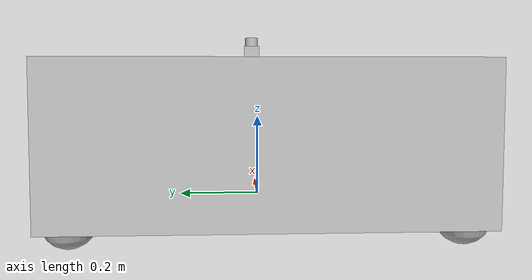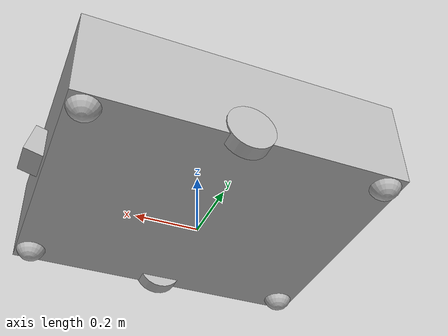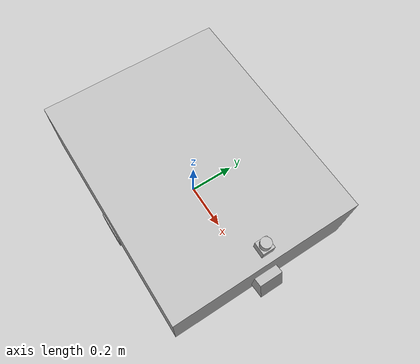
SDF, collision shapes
<?xml version='1.0'?>
<sdf version='1.4'>
  <model name="my_robot">
  <static>false</static>

  <link name='chassis'>
    <pose>0 0 .185 0 0 0</pose>

    <collision name='collision'>
      <geometry>
        <box>
          <size>1 .8 .3</size>
        </box>
      </geometry>
    </collision>
    <visual name='visual'>
    <pose>0 0 0.05 0 0 0</pose>
      <geometry>
        <box>
          <size>1 .8 .3</size>
        </box>
      </geometry>
    </visual>

    <collision name='caster_collision_TL'>
      <pose>.45 .35 -0.135 0 0 0</pose>
      <geometry>
	      <sphere>
	        <radius>.05</radius>
        </sphere>
      </geometry>
      <surface>
        <friction>
	        <ode>
    	      <mu>0</mu>
            <mu2>0</mu2>
            <slip1>1.0</slip1>
            <slip2>1.0</slip2>
	        </ode>
        </friction>
      </surface>
    </collision>
    <visual name='caster_visual_TL'>
      <pose>.45 .35 -0.135 0 0 0</pose>
      <geometry>
        <sphere>
	        <radius>.05</radius>
        </sphere>
      </geometry>
    </visual>

    <collision name='caster_collision_TR'>
      <pose>.45 -.35 -0.135 0 0 0</pose>
      <geometry>
	      <sphere>
	        <radius>.05</radius>
        </sphere>
      </geometry>
      <surface>
        <friction>
	        <ode>
    	      <mu>0</mu>
            <mu2>0</mu2>
            <slip1>1.0</slip1>
            <slip2>1.0</slip2>
	        </ode>
        </friction>
      </surface>
    </collision>
    <visual name='caster_visual_TR'>
      <pose>.45 -.35 -0.135 0 0 0</pose>
      <geometry>
        <sphere>
	        <radius>.05</radius>
        </sphere>
      </geometry>
    </visual>

    <collision name='caster_collision_BL'>
      <pose>-.45 .35 -0.135 0 0 0</pose>
      <geometry>
	      <sphere>
	        <radius>.05</radius>
        </sphere>
      </geometry>
      <surface>
        <friction>
	        <ode>
    	      <mu>0</mu>
            <mu2>0</mu2>
            <slip1>1.0</slip1>
            <slip2>1.0</slip2>
	        </ode>
        </friction>
      </surface>
    </collision>
    <visual name='caster_visual_BL'>
      <pose>-.45 .35 -0.135 0 0 0</pose>
      <geometry>
        <sphere>
	        <radius>.05</radius>
        </sphere>
      </geometry>
    </visual>

    <collision name='caster_collision_BR'>
      <pose>-.45 -.35 -0.135 0 0 0</pose>
      <geometry>
	      <sphere>
	        <radius>.05</radius>
        </sphere>
      </geometry>
      <surface>
        <friction>
	        <ode>
    	      <mu>0</mu>
            <mu2>0</mu2>
            <slip1>1.0</slip1>
            <slip2>1.0</slip2>
	        </ode>
        </friction>
      </surface>
    </collision>
    <visual name='caster_visual_BR'>
      <pose>-.45 -.35 -0.135 0 0 0</pose>
      <geometry>
        <sphere>
	        <radius>.05</radius>
        </sphere>
      </geometry>
    </visual>

  </link>

  <link name="left_wheel">
    <pose>0 0.38 0.075 0 1.5707 1.5707</pose>
    <collision name="collision">
      <geometry>
        <cylinder>
          <radius>.075</radius>
          <length>.05</length>
        </cylinder>
      </geometry>
    </collision>
    <visual name="visual">
      <geometry>
        <cylinder>
          <radius>.075</radius>
          <length>.05</length>
        </cylinder>
      </geometry>
    </visual>
  </link>

  <link name="right_wheel">
    <pose>0 -0.38 0.075 0 1.5707 1.5707</pose>
    <collision name="collision">
      <geometry>
        <cylinder>
          <radius>.075</radius>
          <length>.05</length>
        </cylinder>
      </geometry>
    </collision>
    <visual name="visual">
      <geometry>
        <cylinder>
          <radius>.075</radius>
          <length>.05</length>
        </cylinder>
      </geometry>
    </visual>
  </link>

  <joint type="revolute" name="left_wheel_hinge">
    <pose>0 0 0 0 0 0</pose>
    <child>left_wheel</child>
    <parent>chassis</parent>
    <axis>
      <xyz>0 1 0</xyz>
    </axis>
  </joint>

  <joint type="revolute" name="right_wheel_hinge">
    <pose>0 0 0 0 0 0</pose>
    <child>right_wheel</child>
    <parent>chassis</parent>
    <axis>
      <xyz>0 1 0</xyz>
    </axis>
  </joint>

  <include>
    <uri>model://hokuyo</uri>
    <pose>0.45 0 0.4 0 0 0</pose>
  </include>
  <joint type="fixed" name="hokuyo_joint">
    <child>hokuyo::link</child>
    <parent>chassis</parent>
  </joint>

  <include>
    <uri>model://camera</uri>
    <pose>0.5 0 0.15 0 -0.25 0</pose>
  </include>
  <joint type="fixed" name="camera_joint">
    <child>camera::link</child>
    <parent>chassis</parent>
  </joint>

  </model>
</sdf>

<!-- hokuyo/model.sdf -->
<sdf version="1.5">
  <model name="hokuyo">
    <pose>0 0 0.035 0 0 0</pose>
    <link name="link">
      <inertial>
        <mass>0.1</mass>
      </inertial>
      <visual name="visual">
        <geometry>
          <mesh>
            <uri>model://../model_source/models/hokuyo/meshes/hokuyo.dae</uri>
          </mesh>
        </geometry>
      </visual>
      <collision name="collision-base">
        <pose>0 0 -0.0145 0 0 0</pose>
        <geometry>
          <box>
            <size>0.05 0.05 0.041</size>
          </box>
        </geometry>
      </collision>
      <collision name="collision-top">
        <pose>0 0 0.0205 0 0 0</pose>
        <geometry>
          <cylinder>
            <radius>0.021</radius>
            <length>0.029</length>
          </cylinder>
        </geometry>
      </collision>
      <sensor name="laser" type="ray">
        <pose>0.01 0 0.0175 0 -0 0</pose>
        <ray>
          <scan>
            <horizontal>
              <samples>640</samples>
              <resolution>1</resolution>
              <min_angle>-2.26889</min_angle>
              <max_angle>2.268899</max_angle>
            </horizontal>
          </scan>
          <range>
            <min>0.08</min>
            <max>10</max>
            <resolution>0.01</resolution>
          </range>
        </ray>
        <plugin name="laser" filename="libRayPlugin.so" />
        <always_on>1</always_on>
        <update_rate>30</update_rate>
        <visualize>true</visualize>
      </sensor>
    </link>
  </model>
</sdf>

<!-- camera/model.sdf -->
<sdf version="1.5">
  <model name="camera">
    <pose>0 0 0.05 0 0 0</pose>
    <link name="link">
      <inertial>
        <mass>0.1</mass>
        <inertia>
          <ixx>0.000166667</ixx>
          <iyy>0.000166667</iyy>
          <izz>0.000166667</izz>
        </inertia>
      </inertial>
      <collision name="collision">
        <geometry>
          <box>
            <size>0.1 0.1 0.1</size>
          </box>
        </geometry>
      </collision>
      <visual name="visual">
        <geometry>
          <box>
            <size>0.1 0.1 0.1</size>
          </box>
        </geometry>
      </visual>
      <sensor name="camera" type="camera">
        <camera>
          <horizontal_fov>1.047</horizontal_fov>
          <image>
            <width>320</width>
            <height>240</height>
          </image>
          <clip>
            <near>0.1</near>
            <far>100</far>
          </clip>
        </camera>
        <always_on>1</always_on>
        <update_rate>30</update_rate>
        <visualize>true</visualize>
      </sensor>
    </link>
  </model>
</sdf>
